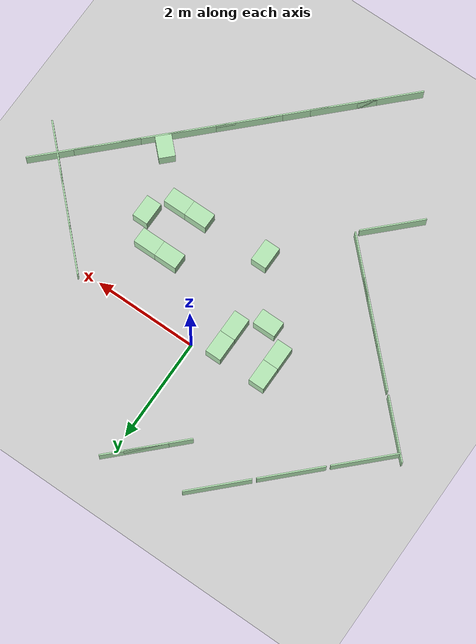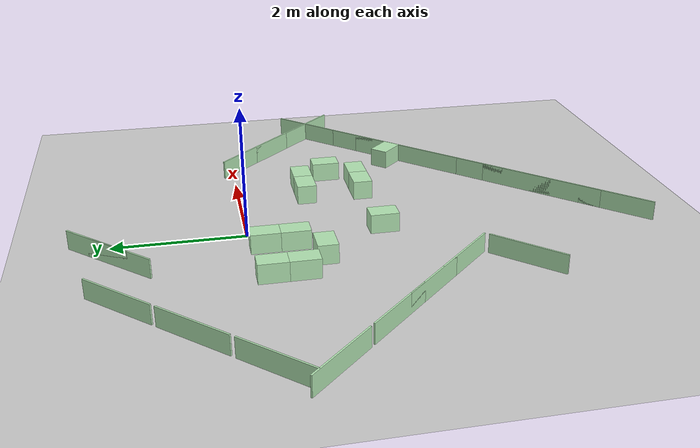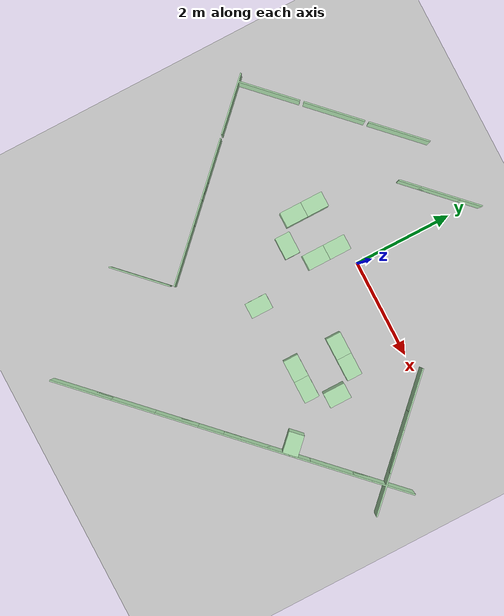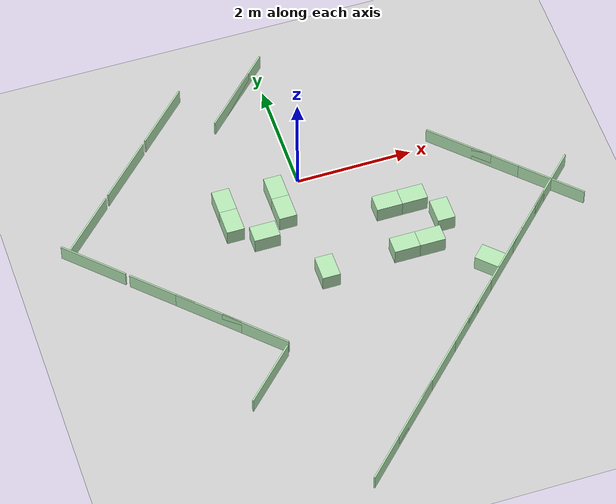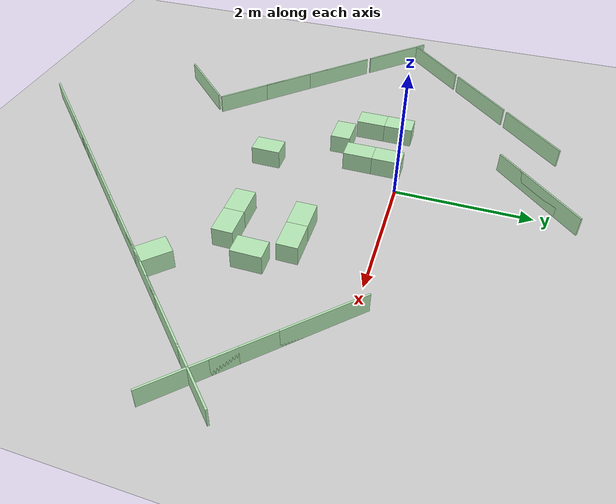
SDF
<?xml version="1.0" encoding="UTF-8"?>
<sdf version="1.4">
  <world name="default">
    <scene>
      <ambient>0.5 0.5 0.5 1</ambient>
      <background>0.5 0.5 0.5 1</background>
      <shadows>false</shadows>
    </scene>
    <physics type="ode">
      <gravity>0 0 -9.81</gravity>
      <ode>
        <solver>
          <type>quick</type>
          <iters>10</iters>
          <sor>1.3</sor>
        </solver>
        <constraints>
          <cfm>0.0</cfm>
          <erp>0.2</erp>
          <contact_max_correcting_vel>100.0</contact_max_correcting_vel>
          <contact_surface_layer>0.001</contact_surface_layer>
        </constraints>
      </ode>
      <real_time_update_rate>1000</real_time_update_rate>
      <max_step_size>0.001</max_step_size>
    </physics>
    <light type="directional" name="directional_light_1">
      <cast_shadows>false</cast_shadows>
      <pose>0 0 30 0.1 0.1 0</pose>
      <diffuse>1.0 1.0 1.0 1</diffuse>
      <specular>.1 .1 .1 1</specular>
      <attenuation>
        <range>300</range>
      </attenuation>
      <direction>0.1 0.1 -1</direction>
    </light>
    <model name='ground_plane'>
      <static>1</static>
      <link name='link'>
        <collision name='collision'>
          <geometry>
            <plane>
              <normal>0 0 1</normal>
              <size>100 100</size>
            </plane>
          </geometry>
          <surface>
            <friction>
              <ode>
                <mu>100</mu>
                <mu2>50</mu2>
              </ode>
              <torsional>
                <ode/>
              </torsional>
            </friction>
            <contact>
              <ode/>
            </contact>
            <bounce/>
          </surface>
          <max_contacts>10</max_contacts>
        </collision>
        <visual name='visual'>
          <cast_shadows>0</cast_shadows>
          <geometry>
            <plane>
              <normal>0 0 1</normal>
              <size>100 100</size>
            </plane>
          </geometry>
          <material>
            <script>
              <uri>file://media/materials/scripts/gazebo.material</uri>
              <name>Gazebo/Grey</name>
            </script>
          </material>
        </visual>
        <self_collide>0</self_collide>
        <kinematic>0</kinematic>
        <gravity>1</gravity>
      </link>
    </model>

<!--______________________________gazebo world______________________________ -->
    <model name="wall_1">
      <static>true</static>
      <link name="wall_1_link">
        <pose> -3.78490971004 -0.736909710044  0.15 0 0 0.785398163397</pose>
        <collision name="wall_1_collision">
          <geometry>
            <box>
              <size>0.0254 1.2192 0.3</size>
            </box>
          </geometry>
        </collision>
        <visual name="wall_1_visual">
          <geometry>
            <box>
              <size>0.0254 1.2192 0.3</size>
            </box>
          </geometry>
          <material>
             <ambient>0.7 0.9 0.7 1.0</ambient>
             <diffuse>0.7 0.9 0.7 1.0</diffuse>
             <specular>0.1 0.1 0.1 1</specular>
             <emissive>0 0 0 0</emissive>
           </material>
        </visual>
      </link>
    </model>

    <model name="wall_2">
      <static>true</static>
      <link name="wall_2_link">
        <pose> -2.87050971004 -1.65130971004  0.15 0 0 0.785398163397</pose>
        <collision name="wall_2_collision">
          <geometry>
            <box>
              <size>0.0254 1.2192 0.3</size>
            </box>
          </geometry>
        </collision>
        <visual name="wall_2_visual">
          <geometry>
            <box>
              <size>0.0254 1.2192 0.3</size>
            </box>
          </geometry>
          <material>
             <ambient>0.7 0.9 0.7 1.0</ambient>
             <diffuse>0.7 0.9 0.7 1.0</diffuse>
             <specular>0.1 0.1 0.1 1</specular>
             <emissive>0 0 0 0</emissive>
           </material>
        </visual>
      </link>
    </model>

    <model name="wall_3">
      <static>true</static>
      <link name="wall_3_link">
        <pose> -2.26090971004 -2.26090971004  0.15 0 0 0.785398163397</pose>
        <collision name="wall_3_collision">
          <geometry>
            <box>
              <size>0.0254 1.2192 0.3</size>
            </box>
          </geometry>
        </collision>
        <visual name="wall_3_visual">
          <geometry>
            <box>
              <size>0.0254 1.2192 0.3</size>
            </box>
          </geometry>
          <material>
             <ambient>0.7 0.9 0.7 1.0</ambient>
             <diffuse>0.7 0.9 0.7 1.0</diffuse>
             <specular>0.1 0.1 0.1 1</specular>
             <emissive>0 0 0 0</emissive>
           </material>
        </visual>
      </link>
    </model>

    <model name="wall_4">
      <static>true</static>
      <link name="wall_4_link">
        <pose> -1.65130971004 -2.87050971004  0.15 0 0 0.785398163397</pose>
        <collision name="wall_4_collision">
          <geometry>
            <box>
              <size>0.0254 1.2192 0.3</size>
            </box>
          </geometry>
        </collision>
        <visual name="wall_4_visual">
          <geometry>
            <box>
              <size>0.0254 1.2192 0.3</size>
            </box>
          </geometry>
          <material>
             <ambient>0.7 0.9 0.7 1.0</ambient>
             <diffuse>0.7 0.9 0.7 1.0</diffuse>
             <specular>0.1 0.1 0.1 1</specular>
             <emissive>0 0 0 0</emissive>
           </material>
        </visual>
      </link>
    </model>

    <model name="wall_5">
      <static>true</static>
      <link name="wall_5_link">
        <pose> -1.69409615818 -3.79230384182  0.15 0 0 -0.785398163397</pose>
        <collision name="wall_5_collision">
          <geometry>
            <box>
              <size>0.0254 1.2192 0.3</size>
            </box>
          </geometry>
        </collision>
        <visual name="wall_5_visual">
          <geometry>
            <box>
              <size>0.0254 1.2192 0.3</size>
            </box>
          </geometry>
          <material>
             <ambient>0.7 0.9 0.7 1.0</ambient>
             <diffuse>0.7 0.9 0.7 1.0</diffuse>
             <specular>0.1 0.1 0.1 1</specular>
             <emissive>0 0 0 0</emissive>
           </material>
        </visual>
      </link>
    </model>

    <model name="wall_11">
      <static>true</static>
      <link name="wall_11_link">
        <pose> 2.77066947648 -0.27733052352  0.15 0 0 0.785398163397</pose>
        <collision name="wall_11_collision">
          <geometry>
            <box>
              <size>0.0254 1.2192 0.3</size>
            </box>
          </geometry>
        </collision>
        <visual name="wall_11_visual">
          <geometry>
            <box>
              <size>0.0254 1.2192 0.3</size>
            </box>
          </geometry>
          <material>
             <ambient>0.7 0.9 0.7 1.0</ambient>
             <diffuse>0.7 0.9 0.7 1.0</diffuse>
             <specular>0.1 0.1 0.1 1</specular>
             <emissive>0 0 0 0</emissive>
           </material>
        </visual>
      </link>
    </model>

    <model name="wall_12">
      <static>true</static>
      <link name="wall_12_link">
        <pose> 3.38026947648 -0.88693052352  0.15 0 0 0.785398163397</pose>
        <collision name="wall_12_collision">
          <geometry>
            <box>
              <size>0.0254 1.2192 0.3</size>
            </box>
          </geometry>
        </collision>
        <visual name="wall_12_visual">
          <geometry>
            <box>
              <size>0.0254 1.2192 0.3</size>
            </box>
          </geometry>
          <material>
             <ambient>0.7 0.9 0.7 1.0</ambient>
             <diffuse>0.7 0.9 0.7 1.0</diffuse>
             <specular>0.1 0.1 0.1 1</specular>
             <emissive>0 0 0 0</emissive>
           </material>
        </visual>
      </link>
    </model>

    <model name="wall_13">
      <static>true</static>
      <link name="wall_13_link">
        <pose> 3.98986947648 -1.49653052352  0.15 0 0 0.785398163397</pose>
        <collision name="wall_13_collision">
          <geometry>
            <box>
              <size>0.0254 1.2192 0.3</size>
            </box>
          </geometry>
        </collision>
        <visual name="wall_13_visual">
          <geometry>
            <box>
              <size>0.0254 1.2192 0.3</size>
            </box>
          </geometry>
          <material>
             <ambient>0.7 0.9 0.7 1.0</ambient>
             <diffuse>0.7 0.9 0.7 1.0</diffuse>
             <specular>0.1 0.1 0.1 1</specular>
             <emissive>0 0 0 0</emissive>
           </material>
        </visual>
      </link>
    </model>

    <model name="wall_14">
      <static>true</static>
      <link name="wall_14_link">
        <pose> -0.312194131772 -5.78380586823  0.15 0 0 -0.785398163397</pose>
        <collision name="wall_14_collision">
          <geometry>
            <box>
              <size>0.0254 1.2192 0.3</size>
            </box>
          </geometry>
        </collision>
        <visual name="wall_14_visual">
          <geometry>
            <box>
              <size>0.0254 1.2192 0.3</size>
            </box>
          </geometry>
          <material>
             <ambient>0.7 0.9 0.7 1.0</ambient>
             <diffuse>0.7 0.9 0.7 1.0</diffuse>
             <specular>0.1 0.1 0.1 1</specular>
             <emissive>0 0 0 0</emissive>
           </material>
        </visual>
      </link>
    </model>

    <model name="wall_15">
      <static>true</static>
      <link name="wall_15_link">
        <pose> 0.297405868228 -5.17420586823  0.15 0 0 -0.785398163397</pose>
        <collision name="wall_15_collision">
          <geometry>
            <box>
              <size>0.0254 1.2192 0.3</size>
            </box>
          </geometry>
        </collision>
        <visual name="wall_15_visual">
          <geometry>
            <box>
              <size>0.0254 1.2192 0.3</size>
            </box>
          </geometry>
          <material>
             <ambient>0.7 0.9 0.7 1.0</ambient>
             <diffuse>0.7 0.9 0.7 1.0</diffuse>
             <specular>0.1 0.1 0.1 1</specular>
             <emissive>0 0 0 0</emissive>
           </material>
        </visual>
      </link>
    </model>

    <model name="wall_16">
      <static>true</static>
      <link name="wall_16_link">
        <pose> 0.907005868228 -4.56460586823  0.15 0 0 -0.785398163397</pose>
        <collision name="wall_16_collision">
          <geometry>
            <box>
              <size>0.0254 1.2192 0.3</size>
            </box>
          </geometry>
        </collision>
        <visual name="wall_16_visual">
          <geometry>
            <box>
              <size>0.0254 1.2192 0.3</size>
            </box>
          </geometry>
          <material>
             <ambient>0.7 0.9 0.7 1.0</ambient>
             <diffuse>0.7 0.9 0.7 1.0</diffuse>
             <specular>0.1 0.1 0.1 1</specular>
             <emissive>0 0 0 0</emissive>
           </material>
        </visual>
      </link>
    </model>

    <model name="wall_17">
      <static>true</static>
      <link name="wall_17_link">
        <pose> 1.51660586823 -3.95500586823  0.15 0 0 -0.785398163397</pose>
        <collision name="wall_17_collision">
          <geometry>
            <box>
              <size>0.0254 1.2192 0.3</size>
            </box>
          </geometry>
        </collision>
        <visual name="wall_17_visual">
          <geometry>
            <box>
              <size>0.0254 1.2192 0.3</size>
            </box>
          </geometry>
          <material>
             <ambient>0.7 0.9 0.7 1.0</ambient>
             <diffuse>0.7 0.9 0.7 1.0</diffuse>
             <specular>0.1 0.1 0.1 1</specular>
             <emissive>0 0 0 0</emissive>
           </material>
        </visual>
      </link>
    </model>

    <model name="wall_18">
      <static>true</static>
      <link name="wall_18_link">
        <pose> 2.12620586823 -3.34540586823  0.15 0 0 -0.785398163397</pose>
        <collision name="wall_18_collision">
          <geometry>
            <box>
              <size>0.0254 1.2192 0.3</size>
            </box>
          </geometry>
        </collision>
        <visual name="wall_18_visual">
          <geometry>
            <box>
              <size>0.0254 1.2192 0.3</size>
            </box>
          </geometry>
          <material>
             <ambient>0.7 0.9 0.7 1.0</ambient>
             <diffuse>0.7 0.9 0.7 1.0</diffuse>
             <specular>0.1 0.1 0.1 1</specular>
             <emissive>0 0 0 0</emissive>
           </material>
        </visual>
      </link>
    </model>

    <model name="wall_19">
      <static>true</static>
      <link name="wall_19_link">
        <pose> 2.73580586823 -2.73580586823  0.15 0 0 -0.785398163397</pose>
        <collision name="wall_19_collision">
          <geometry>
            <box>
              <size>0.0254 1.2192 0.3</size>
            </box>
          </geometry>
        </collision>
        <visual name="wall_19_visual">
          <geometry>
            <box>
              <size>0.0254 1.2192 0.3</size>
            </box>
          </geometry>
          <material>
             <ambient>0.7 0.9 0.7 1.0</ambient>
             <diffuse>0.7 0.9 0.7 1.0</diffuse>
             <specular>0.1 0.1 0.1 1</specular>
             <emissive>0 0 0 0</emissive>
           </material>
        </visual>
      </link>
    </model>

    <model name="wall_20">
      <static>true</static>
      <link name="wall_20_link">
        <pose> 3.34540586823 -2.12620586823  0.15 0 0 -0.785398163397</pose>
        <collision name="wall_20_collision">
          <geometry>
            <box>
              <size>0.0254 1.2192 0.3</size>
            </box>
          </geometry>
        </collision>
        <visual name="wall_20_visual">
          <geometry>
            <box>
              <size>0.0254 1.2192 0.3</size>
            </box>
          </geometry>
          <material>
             <ambient>0.7 0.9 0.7 1.0</ambient>
             <diffuse>0.7 0.9 0.7 1.0</diffuse>
             <specular>0.1 0.1 0.1 1</specular>
             <emissive>0 0 0 0</emissive>
           </material>
        </visual>
      </link>
    </model>

    <model name="wall_21">
      <static>true</static>
      <link name="wall_21_link">
        <pose> 3.95500586823 -1.51660586823  0.15 0 0 -0.785398163397</pose>
        <collision name="wall_21_collision">
          <geometry>
            <box>
              <size>0.0254 1.2192 0.3</size>
            </box>
          </geometry>
        </collision>
        <visual name="wall_21_visual">
          <geometry>
            <box>
              <size>0.0254 1.2192 0.3</size>
            </box>
          </geometry>
          <material>
             <ambient>0.7 0.9 0.7 1.0</ambient>
             <diffuse>0.7 0.9 0.7 1.0</diffuse>
             <specular>0.1 0.1 0.1 1</specular>
             <emissive>0 0 0 0</emissive>
           </material>
        </visual>
      </link>
    </model>

    <model name="wall_22">
      <static>true</static>
      <link name="wall_22_link">
        <pose> -0.295819743879 2.14258025612  0.15 0 0 -0.785398163397</pose>
        <collision name="wall_22_collision">
          <geometry>
            <box>
              <size>0.0254 1.2192 0.3</size>
            </box>
          </geometry>
        </collision>
        <visual name="wall_22_visual">
          <geometry>
            <box>
              <size>0.0254 1.2192 0.3</size>
            </box>
          </geometry>
          <material>
             <ambient>0.7 0.9 0.7 1.0</ambient>
             <diffuse>0.7 0.9 0.7 1.0</diffuse>
             <specular>0.1 0.1 0.1 1</specular>
             <emissive>0 0 0 0</emissive>
           </material>
        </visual>
      </link>
    </model>

    <model name="wall_23">
      <static>true</static>
      <link name="wall_23_link">
        <pose> -0.600619743879 1.83778025612  0.15 0 0 -0.785398163397</pose>
        <collision name="wall_23_collision">
          <geometry>
            <box>
              <size>0.0254 1.2192 0.3</size>
            </box>
          </geometry>
        </collision>
        <visual name="wall_23_visual">
          <geometry>
            <box>
              <size>0.0254 1.2192 0.3</size>
            </box>
          </geometry>
          <material>
             <ambient>0.7 0.9 0.7 1.0</ambient>
             <diffuse>0.7 0.9 0.7 1.0</diffuse>
             <specular>0.1 0.1 0.1 1</specular>
             <emissive>0 0 0 0</emissive>
           </material>
        </visual>
      </link>
    </model>

    <model name="wall_24">
      <static>true</static>
      <link name="wall_24_link">
        <pose> -1.83778025612 1.83778025612  0.15 0 0 -0.785398163397</pose>
        <collision name="wall_24_collision">
          <geometry>
            <box>
              <size>0.0254 1.2192 0.3</size>
            </box>
          </geometry>
        </collision>
        <visual name="wall_24_visual">
          <geometry>
            <box>
              <size>0.0254 1.2192 0.3</size>
            </box>
          </geometry>
          <material>
             <ambient>0.7 0.9 0.7 1.0</ambient>
             <diffuse>0.7 0.9 0.7 1.0</diffuse>
             <specular>0.1 0.1 0.1 1</specular>
             <emissive>0 0 0 0</emissive>
           </material>
        </visual>
      </link>
    </model>

    <model name="wall_25">
      <static>true</static>
      <link name="wall_25_link">
        <pose> -2.75218025612 0.923380256121  0.15 0 0 -0.785398163397</pose>
        <collision name="wall_25_collision">
          <geometry>
            <box>
              <size>0.0254 1.2192 0.3</size>
            </box>
          </geometry>
        </collision>
        <visual name="wall_25_visual">
          <geometry>
            <box>
              <size>0.0254 1.2192 0.3</size>
            </box>
          </geometry>
          <material>
             <ambient>0.7 0.9 0.7 1.0</ambient>
             <diffuse>0.7 0.9 0.7 1.0</diffuse>
             <specular>0.1 0.1 0.1 1</specular>
             <emissive>0 0 0 0</emissive>
           </material>
        </visual>
      </link>
    </model>

    <model name="wall_26">
      <static>true</static>
      <link name="wall_26_link">
        <pose> -3.66658025612 0.00898025612107  0.15 0 0 -0.785398163397</pose>
        <collision name="wall_26_collision">
          <geometry>
            <box>
              <size>0.0254 1.2192 0.3</size>
            </box>
          </geometry>
        </collision>
        <visual name="wall_26_visual">
          <geometry>
            <box>
              <size>0.0254 1.2192 0.3</size>
            </box>
          </geometry>
          <material>
             <ambient>0.7 0.9 0.7 1.0</ambient>
             <diffuse>0.7 0.9 0.7 1.0</diffuse>
             <specular>0.1 0.1 0.1 1</specular>
             <emissive>0 0 0 0</emissive>
           </material>
        </visual>
      </link>
    </model>

    <model name="box_1">
      <static>true</static>
      <link name="box_1_link">
        <pose> 1.2192 -1.0668  0.15 0 0 1.57079632679</pose>
        <collision name="box_1_collision">
          <geometry>
            <box>
              <size>0.3048 0.4445 0.3</size>
            </box>
          </geometry>
        </collision>
        <visual name="box_1_visual">
          <geometry>
            <box>
              <size>0.3048 0.4445 0.3</size>
            </box>
          </geometry>
          <material>
             <ambient>0.7 0.9 0.7 1.0</ambient>
             <diffuse>0.7 0.9 0.7 1.0</diffuse>
             <specular>0.1 0.1 0.1 1</specular>
             <emissive>0 0 0 0</emissive>
           </material>
        </visual>
      </link>
    </model>

    <model name="box_2">
      <static>true</static>
      <link name="box_2_link">
        <pose> 1.6637 -1.0668  0.15 0 0 1.57079632679</pose>
        <collision name="box_2_collision">
          <geometry>
            <box>
              <size>0.3048 0.4445 0.3</size>
            </box>
          </geometry>
        </collision>
        <visual name="box_2_visual">
          <geometry>
            <box>
              <size>0.3048 0.4445 0.3</size>
            </box>
          </geometry>
          <material>
             <ambient>0.7 0.9 0.7 1.0</ambient>
             <diffuse>0.7 0.9 0.7 1.0</diffuse>
             <specular>0.1 0.1 0.1 1</specular>
             <emissive>0 0 0 0</emissive>
           </material>
        </visual>
      </link>
    </model>

    <model name="box_3">
      <static>true</static>
      <link name="box_3_link">
        <pose> 1.2192 -1.9812  0.15 0 0 1.57079632679</pose>
        <collision name="box_3_collision">
          <geometry>
            <box>
              <size>0.3048 0.4445 0.3</size>
            </box>
          </geometry>
        </collision>
        <visual name="box_3_visual">
          <geometry>
            <box>
              <size>0.3048 0.4445 0.3</size>
            </box>
          </geometry>
          <material>
             <ambient>0.7 0.9 0.7 1.0</ambient>
             <diffuse>0.7 0.9 0.7 1.0</diffuse>
             <specular>0.1 0.1 0.1 1</specular>
             <emissive>0 0 0 0</emissive>
           </material>
        </visual>
      </link>
    </model>

    <model name="box_4">
      <static>true</static>
      <link name="box_4_link">
        <pose> 1.6637 -1.9812  0.15 0 0 1.57079632679</pose>
        <collision name="box_4_collision">
          <geometry>
            <box>
              <size>0.3048 0.4445 0.3</size>
            </box>
          </geometry>
        </collision>
        <visual name="box_4_visual">
          <geometry>
            <box>
              <size>0.3048 0.4445 0.3</size>
            </box>
          </geometry>
          <material>
             <ambient>0.7 0.9 0.7 1.0</ambient>
             <diffuse>0.7 0.9 0.7 1.0</diffuse>
             <specular>0.1 0.1 0.1 1</specular>
             <emissive>0 0 0 0</emissive>
           </material>
        </visual>
      </link>
    </model>

    <model name="box_5">
      <static>true</static>
      <link name="box_5_link">
        <pose> 2.03835 -1.524  0.15 0 0 0.0</pose>
        <collision name="box_5_collision">
          <geometry>
            <box>
              <size>0.3048 0.4445 0.3</size>
            </box>
          </geometry>
        </collision>
        <visual name="box_5_visual">
          <geometry>
            <box>
              <size>0.3048 0.4445 0.3</size>
            </box>
          </geometry>
          <material>
             <ambient>0.7 0.9 0.7 1.0</ambient>
             <diffuse>0.7 0.9 0.7 1.0</diffuse>
             <specular>0.1 0.1 0.1 1</specular>
             <emissive>0 0 0 0</emissive>
           </material>
        </visual>
      </link>
    </model>

    <model name="box_6">
      <static>true</static>
      <link name="box_6_link">
        <pose> 2.47537844072 -2.69090458762  0.15 0 0 0.785398163397</pose>
        <collision name="box_6_collision">
          <geometry>
            <box>
              <size>0.3048 0.4445 0.3</size>
            </box>
          </geometry>
        </collision>
        <visual name="box_6_visual">
          <geometry>
            <box>
              <size>0.3048 0.4445 0.3</size>
            </box>
          </geometry>
          <material>
             <ambient>0.7 0.9 0.7 1.0</ambient>
             <diffuse>0.7 0.9 0.7 1.0</diffuse>
             <specular>0.1 0.1 0.1 1</specular>
             <emissive>0 0 0 0</emissive>
           </material>
        </visual>
      </link>
    </model>

    <model name="box_7">
      <static>true</static>
      <link name="box_7_link">
        <pose> -0.1524 -2.05105  0.15 0 0 0.0</pose>
        <collision name="box_7_collision">
          <geometry>
            <box>
              <size>0.3048 0.4445 0.3</size>
            </box>
          </geometry>
        </collision>
        <visual name="box_7_visual">
          <geometry>
            <box>
              <size>0.3048 0.4445 0.3</size>
            </box>
          </geometry>
          <material>
             <ambient>0.7 0.9 0.7 1.0</ambient>
             <diffuse>0.7 0.9 0.7 1.0</diffuse>
             <specular>0.1 0.1 0.1 1</specular>
             <emissive>0 0 0 0</emissive>
           </material>
        </visual>
      </link>
    </model>

    <model name="box_8">
      <static>true</static>
      <link name="box_8_link">
        <pose> -1.3716 -0.22225  0.15 0 0 0.0</pose>
        <collision name="box_8_collision">
          <geometry>
            <box>
              <size>0.3048 0.4445 0.3</size>
            </box>
          </geometry>
        </collision>
        <visual name="box_8_visual">
          <geometry>
            <box>
              <size>0.3048 0.4445 0.3</size>
            </box>
          </geometry>
          <material>
             <ambient>0.7 0.9 0.7 1.0</ambient>
             <diffuse>0.7 0.9 0.7 1.0</diffuse>
             <specular>0.1 0.1 0.1 1</specular>
             <emissive>0 0 0 0</emissive>
           </material>
        </visual>
      </link>
    </model>

    <model name="box_9">
      <static>true</static>
      <link name="box_9_link">
        <pose> -1.3716 -0.22225  0.15 0 0 0.0</pose>
        <collision name="box_9_collision">
          <geometry>
            <box>
              <size>0.3048 0.4445 0.3</size>
            </box>
          </geometry>
        </collision>
        <visual name="box_9_visual">
          <geometry>
            <box>
              <size>0.3048 0.4445 0.3</size>
            </box>
          </geometry>
          <material>
             <ambient>0.7 0.9 0.7 1.0</ambient>
             <diffuse>0.7 0.9 0.7 1.0</diffuse>
             <specular>0.1 0.1 0.1 1</specular>
             <emissive>0 0 0 0</emissive>
           </material>
        </visual>
      </link>
    </model>

    <model name="box_10">
      <static>true</static>
      <link name="box_10_link">
        <pose> -1.3716 -0.66675  0.15 0 0 0.0</pose>
        <collision name="box_10_collision">
          <geometry>
            <box>
              <size>0.3048 0.4445 0.3</size>
            </box>
          </geometry>
        </collision>
        <visual name="box_10_visual">
          <geometry>
            <box>
              <size>0.3048 0.4445 0.3</size>
            </box>
          </geometry>
          <material>
             <ambient>0.7 0.9 0.7 1.0</ambient>
             <diffuse>0.7 0.9 0.7 1.0</diffuse>
             <specular>0.1 0.1 0.1 1</specular>
             <emissive>0 0 0 0</emissive>
           </material>
        </visual>
      </link>
    </model>

    <model name="box_11">
      <static>true</static>
      <link name="box_11_link">
        <pose> -0.4572 -0.22225  0.15 0 0 0.0</pose>
        <collision name="box_11_collision">
          <geometry>
            <box>
              <size>0.3048 0.4445 0.3</size>
            </box>
          </geometry>
        </collision>
        <visual name="box_11_visual">
          <geometry>
            <box>
              <size>0.3048 0.4445 0.3</size>
            </box>
          </geometry>
          <material>
             <ambient>0.7 0.9 0.7 1.0</ambient>
             <diffuse>0.7 0.9 0.7 1.0</diffuse>
             <specular>0.1 0.1 0.1 1</specular>
             <emissive>0 0 0 0</emissive>
           </material>
        </visual>
      </link>
    </model>

    <model name="box_12">
      <static>true</static>
      <link name="box_12_link">
        <pose> -0.4572 -0.66675  0.15 0 0 0.0</pose>
        <collision name="box_12_collision">
          <geometry>
            <box>
              <size>0.3048 0.4445 0.3</size>
            </box>
          </geometry>
        </collision>
        <visual name="box_12_visual">
          <geometry>
            <box>
              <size>0.3048 0.4445 0.3</size>
            </box>
          </geometry>
          <material>
             <ambient>0.7 0.9 0.7 1.0</ambient>
             <diffuse>0.7 0.9 0.7 1.0</diffuse>
             <specular>0.1 0.1 0.1 1</specular>
             <emissive>0 0 0 0</emissive>
           </material>
        </visual>
      </link>
    </model>

    <model name="box_13">
      <static>true</static>
      <link name="box_13_link">
        <pose> -0.9144 -1.0414  0.15 0 0 1.57079632679</pose>
        <collision name="box_13_collision">
          <geometry>
            <box>
              <size>0.3048 0.4445 0.3</size>
            </box>
          </geometry>
        </collision>
        <visual name="box_13_visual">
          <geometry>
            <box>
              <size>0.3048 0.4445 0.3</size>
            </box>
          </geometry>
          <material>
             <ambient>0.7 0.9 0.7 1.0</ambient>
             <diffuse>0.7 0.9 0.7 1.0</diffuse>
             <specular>0.1 0.1 0.1 1</specular>
             <emissive>0 0 0 0</emissive>
           </material>
        </visual>
      </link>
    </model>

<!--______________________________gazebo world______________________________ -->

  </world>
</sdf>
